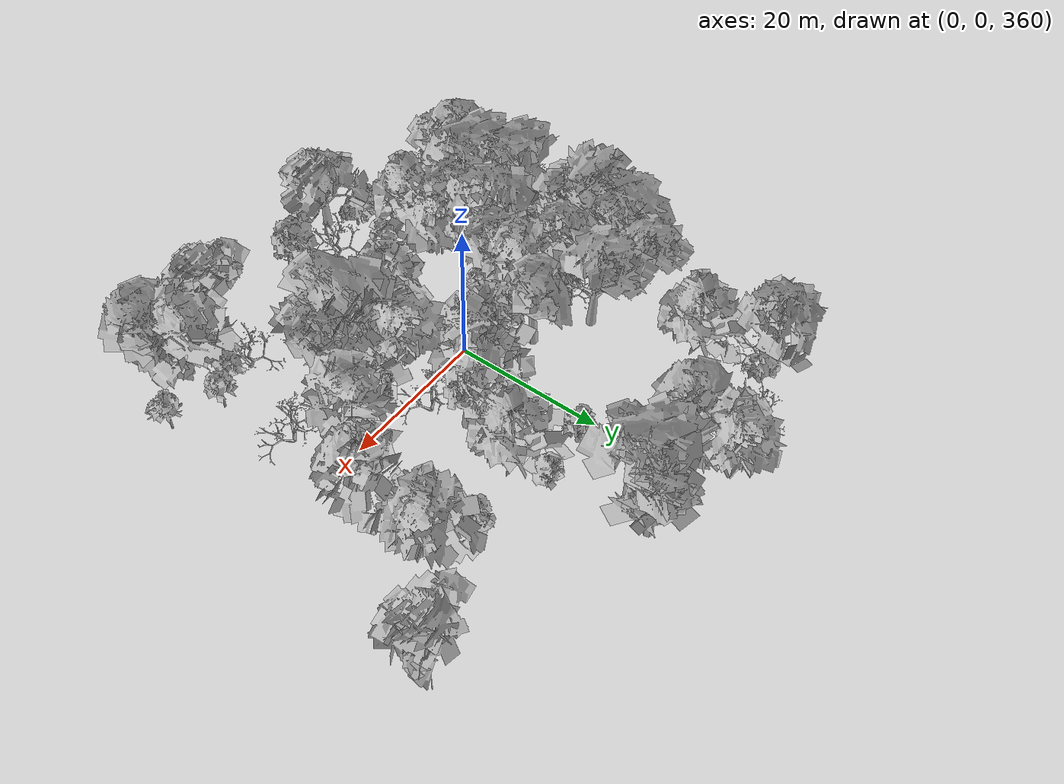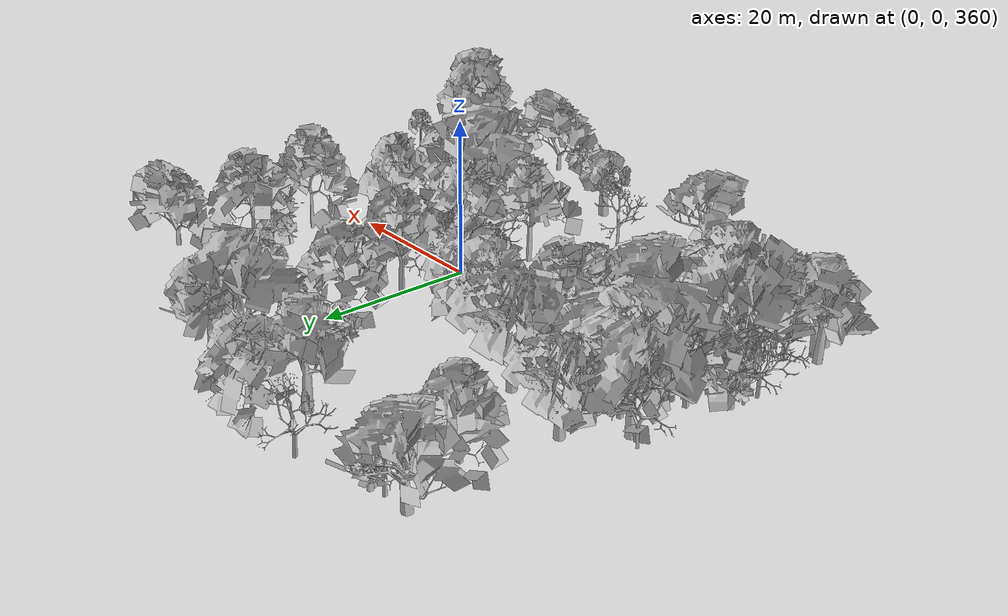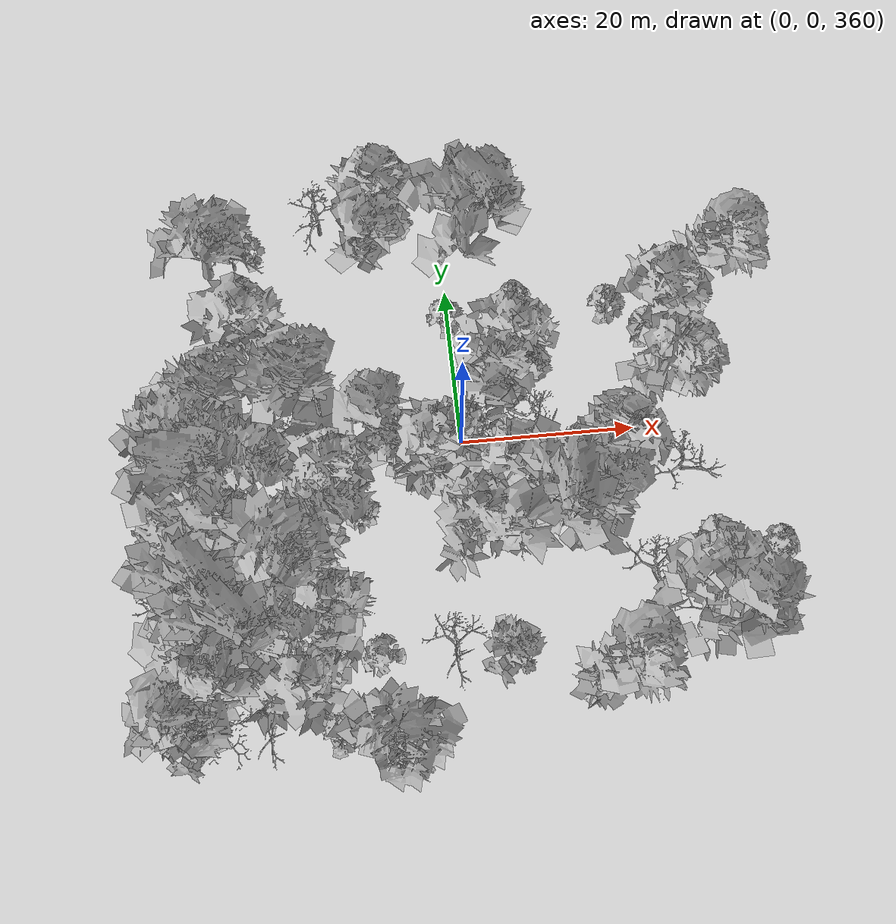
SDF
<sdf version="1.6">
 <world name="default">
  <light name="sun" type="directional">
   <pose>0 0 10 0 -0 0</pose>
   <diffuse>0.8 0.8 0.8 1</diffuse>
   <specular>0.2 0.2 0.2 1</specular>
   <attenuation>
    <range>1000</range>
    <constant>0.9</constant>
    <linear>0.01</linear>
    <quadratic>0.001</quadratic>
   </attenuation>
   <direction>-0.5 0.1 -0.9</direction>
  </light>
  <scene>
   <sky><clouds><speed>12</speed></clouds></sky>
   <ambient>0.4 0.4 0.4 1</ambient>
   <background>0.7 0.7 0.7 1</background>
   <shadows>1</shadows>
  </scene>
  <spherical_coordinates>
   <surface_model>EARTH_WGS84</surface_model>
   <latitude_deg>47.3977</latitude_deg>
   <longitude_deg>8.54559</longitude_deg>
   <elevation>0</elevation>
   <heading_deg>0</heading_deg>
  </spherical_coordinates>
  <physics name="default_physics" default="0" type="ode">
   <ode>
    <solver>
     <type>quick</type>
     <iters>100</iters>
     <sor>1.3</sor>
     <use_dynamic_moi_rescaling>0</use_dynamic_moi_rescaling>
    </solver>
    <constraints>
     <cfm>0</cfm>
     <erp>0.2</erp>
     <contact_max_correcting_vel>100</contact_max_correcting_vel>
     <contact_surface_layer>0.001</contact_surface_layer>
    </constraints>
   </ode>
   <max_step_size>0.002</max_step_size>
   <real_time_factor>1</real_time_factor>
   <real_time_update_rate>500</real_time_update_rate>
  </physics>
  <gravity>0 0 -9.8</gravity>
  <magnetic_field>6e-06 2.3e-05 -4.2e-05</magnetic_field>
  <atmosphere type="adiabatic"/>
  <model name="my_mesh0">
   <pose>-20.5036 -26.4798 354.043 0 -0 0.010311</pose>
   <static>1</static>
   <link name="body">
    <visual name="visual">
     <geometry><mesh><uri>model://trees/12.dae</uri><scale>1 1 1</scale></mesh></geometry>
    </visual>
    <collision name="collision">
     <geometry><mesh><uri>model://trees/12.dae</uri><scale>1 1 1</scale></mesh></geometry>
    </collision>
   </link>
  </model>
  <model name="my_mesh1">
   <pose>-11.192 -23.6616 355.386 0 -0 1.08261</pose>
   <static>1</static>
   <link name="body">
    <visual name="visual">
     <geometry><mesh><uri>model://trees/0.dae</uri><scale>1 1 1</scale></mesh></geometry>
    </visual>
    <collision name="collision">
     <geometry><mesh><uri>model://trees/0.dae</uri><scale>1 1 1</scale></mesh></geometry>
    </collision>
   </link>
  </model>
  <model name="my_mesh2">
   <pose>-29.6791 -3.30644 353.285 0 -0 0.577973</pose>
   <static>1</static>
   <link name="body">
    <visual name="visual">
     <geometry><mesh><uri>model://trees/14.dae</uri><scale>1 1 1</scale></mesh></geometry>
    </visual>
    <collision name="collision">
     <geometry><mesh><uri>model://trees/14.dae</uri><scale>1 1 1</scale></mesh></geometry>
    </collision>
   </link>
  </model>
  <model name="my_mesh3">
   <pose>-34.6374 -12.186 352.015 0 -0 1.23008</pose>
   <static>1</static>
   <link name="body">
    <visual name="visual">
     <geometry><mesh><uri>model://trees/1.dae</uri><scale>1 1 1</scale></mesh></geometry>
    </visual>
    <collision name="collision">
     <geometry><mesh><uri>model://trees/1.dae</uri><scale>1 1 1</scale></mesh></geometry>
    </collision>
   </link>
  </model>
  <model name="my_mesh4">
   <pose>-29.538 0.602237 353.231 0 0 -0.56561</pose>
   <static>1</static>
   <link name="body">
    <visual name="visual">
     <geometry><mesh><uri>model://trees/12.dae</uri><scale>1 1 1</scale></mesh></geometry>
    </visual>
    <collision name="collision">
     <geometry><mesh><uri>model://trees/12.dae</uri><scale>1 1 1</scale></mesh></geometry>
    </collision>
   </link>
  </model>
  <model name="my_mesh5">
   <pose>-16.5416 -7.94843 354.553 0 -0 0.035001</pose>
   <static>1</static>
   <link name="body">
    <visual name="visual">
     <geometry><mesh><uri>model://trees/8.dae</uri><scale>1 1 1</scale></mesh></geometry>
    </visual>
    <collision name="collision">
     <geometry><mesh><uri>model://trees/8.dae</uri><scale>1 1 1</scale></mesh></geometry>
    </collision>
   </link>
  </model>
  <model name="my_mesh6">
   <pose>-34.176 -14.154 351.961 0 0 -0.295701</pose>
   <static>1</static>
   <link name="body">
    <visual name="visual">
     <geometry><mesh><uri>model://trees/3.dae</uri><scale>1 1 1</scale></mesh></geometry>
    </visual>
    <collision name="collision">
     <geometry><mesh><uri>model://trees/3.dae</uri><scale>1 1 1</scale></mesh></geometry>
    </collision>
   </link>
  </model>
  <model name="my_mesh7">
   <pose>-32.1192 -19.0101 352.386 0 0 -0.694202</pose>
   <static>1</static>
   <link name="body">
    <visual name="visual">
     <geometry><mesh><uri>model://trees/16.dae</uri><scale>1 1 1</scale></mesh></geometry>
    </visual>
    <collision name="collision">
     <geometry><mesh><uri>model://trees/16.dae</uri><scale>1 1 1</scale></mesh></geometry>
    </collision>
   </link>
  </model>
  <model name="my_mesh8">
   <pose>-27.8522 -5.75338 353.403 0 0 -0.846733</pose>
   <static>1</static>
   <link name="body">
    <visual name="visual">
     <geometry><mesh><uri>model://trees/17.dae</uri><scale>1 1 1</scale></mesh></geometry>
    </visual>
    <collision name="collision">
     <geometry><mesh><uri>model://trees/17.dae</uri><scale>1 1 1</scale></mesh></geometry>
    </collision>
   </link>
  </model>
  <model name="my_mesh9">
   <pose>-34.8133 -16.576 351.874 0 0 -0.484392</pose>
   <static>1</static>
   <link name="body">
    <visual name="visual">
     <geometry><mesh><uri>model://trees/17.dae</uri><scale>1 1 1</scale></mesh></geometry>
    </visual>
    <collision name="collision">
     <geometry><mesh><uri>model://trees/17.dae</uri><scale>1 1 1</scale></mesh></geometry>
    </collision>
   </link>
  </model>
  <model name="my_mesh10">
   <pose>-27.8866 -18.7558 353.021 0 0 -1.43969</pose>
   <static>1</static>
   <link name="body">
    <visual name="visual">
     <geometry><mesh><uri>model://trees/16.dae</uri><scale>1 1 1</scale></mesh></geometry>
    </visual>
    <collision name="collision">
     <geometry><mesh><uri>model://trees/16.dae</uri><scale>1 1 1</scale></mesh></geometry>
    </collision>
   </link>
  </model>
  <model name="my_mesh11">
   <pose>-27.0067 -12.3636 353.096 0 -0 0.174064</pose>
   <static>1</static>
   <link name="body">
    <visual name="visual">
     <geometry><mesh><uri>model://trees/3.dae</uri><scale>1 1 1</scale></mesh></geometry>
    </visual>
    <collision name="collision">
     <geometry><mesh><uri>model://trees/3.dae</uri><scale>1 1 1</scale></mesh></geometry>
    </collision>
   </link>
  </model>
  <model name="my_mesh12">
   <pose>-31.5217 -25.0569 352.507 0 0 -1.18894</pose>
   <static>1</static>
   <link name="body">
    <visual name="visual">
     <geometry><mesh><uri>model://trees/14.dae</uri><scale>1 1 1</scale></mesh></geometry>
    </visual>
    <collision name="collision">
     <geometry><mesh><uri>model://trees/14.dae</uri><scale>1 1 1</scale></mesh></geometry>
    </collision>
   </link>
  </model>
  <model name="my_mesh13">
   <pose>-32.6502 1.9195 352.778 0 -0 0.16651</pose>
   <static>1</static>
   <link name="body">
    <visual name="visual">
     <geometry><mesh><uri>model://trees/9.dae</uri><scale>1 1 1</scale></mesh></geometry>
    </visual>
    <collision name="collision">
     <geometry><mesh><uri>model://trees/9.dae</uri><scale>1 1 1</scale></mesh></geometry>
    </collision>
   </link>
  </model>
  <model name="my_mesh14">
   <pose>-32.0418 -7.39521 352.788 0 -0 1.0194</pose>
   <static>1</static>
   <link name="body">
    <visual name="visual">
     <geometry><mesh><uri>model://trees/13.dae</uri><scale>1 1 1</scale></mesh></geometry>
    </visual>
    <collision name="collision">
     <geometry><mesh><uri>model://trees/13.dae</uri><scale>1 1 1</scale></mesh></geometry>
    </collision>
   </link>
  </model>
  <model name="my_mesh15">
   <pose>-23.2618 -20.929 353.694 0 -0 0.174832</pose>
   <static>1</static>
   <link name="body">
    <visual name="visual">
     <geometry><mesh><uri>model://trees/8.dae</uri><scale>1 1 1</scale></mesh></geometry>
    </visual>
    <collision name="collision">
     <geometry><mesh><uri>model://trees/8.dae</uri><scale>1 1 1</scale></mesh></geometry>
    </collision>
   </link>
  </model>
  <model name="my_mesh16">
   <pose>-29.1205 -30.9468 353.035 0 0 -0.80468</pose>
   <static>1</static>
   <link name="body">
    <visual name="visual">
     <geometry><mesh><uri>model://trees/19.dae</uri><scale>1 1 1</scale></mesh></geometry>
    </visual>
    <collision name="collision">
     <geometry><mesh><uri>model://trees/19.dae</uri><scale>1 1 1</scale></mesh></geometry>
    </collision>
   </link>
  </model>
  <model name="my_mesh17">
   <pose>-26.6073 -16.3002 353.094 0 -0 0.026992</pose>
   <static>1</static>
   <link name="body">
    <visual name="visual">
     <geometry><mesh><uri>model://trees/1.dae</uri><scale>1 1 1</scale></mesh></geometry>
    </visual>
    <collision name="collision">
     <geometry><mesh><uri>model://trees/1.dae</uri><scale>1 1 1</scale></mesh></geometry>
    </collision>
   </link>
  </model>
  <model name="my_mesh18">
   <pose>-21.8346 -21.0284 353.866 0 -0 1.43863</pose>
   <static>1</static>
   <link name="body">
    <visual name="visual">
     <geometry><mesh><uri>model://trees/18.dae</uri><scale>1 1 1</scale></mesh></geometry>
    </visual>
    <collision name="collision">
     <geometry><mesh><uri>model://trees/18.dae</uri><scale>1 1 1</scale></mesh></geometry>
    </collision>
   </link>
  </model>
  <model name="my_mesh19">
   <pose>-30.3939 -24.4199 352.759 0 0 -0.976228</pose>
   <static>1</static>
   <link name="body">
    <visual name="visual">
     <geometry><mesh><uri>model://trees/19.dae</uri><scale>1 1 1</scale></mesh></geometry>
    </visual>
    <collision name="collision">
     <geometry><mesh><uri>model://trees/19.dae</uri><scale>1 1 1</scale></mesh></geometry>
    </collision>
   </link>
  </model>
  <model name="my_mesh20">
   <pose>-28.4761 -21.8634 352.98 0 -0 1.51411</pose>
   <static>1</static>
   <link name="body">
    <visual name="visual">
     <geometry><mesh><uri>model://trees/8.dae</uri><scale>1 1 1</scale></mesh></geometry>
    </visual>
    <collision name="collision">
     <geometry><mesh><uri>model://trees/8.dae</uri><scale>1 1 1</scale></mesh></geometry>
    </collision>
   </link>
  </model>
  <model name="my_mesh21">
   <pose>-32.2659 -31.7949 352.458 0 -0 0.498079</pose>
   <static>1</static>
   <link name="body">
    <visual name="visual">
     <geometry><mesh><uri>model://trees/7.dae</uri><scale>1 1 1</scale></mesh></geometry>
    </visual>
    <collision name="collision">
     <geometry><mesh><uri>model://trees/7.dae</uri><scale>1 1 1</scale></mesh></geometry>
    </collision>
   </link>
  </model>
  <model name="my_mesh22">
   <pose>-29.5394 -16.6589 352.685 0 0 -0.039821</pose>
   <static>1</static>
   <link name="body">
    <visual name="visual">
     <geometry><mesh><uri>model://trees/16.dae</uri><scale>1 1 1</scale></mesh></geometry>
    </visual>
    <collision name="collision">
     <geometry><mesh><uri>model://trees/16.dae</uri><scale>1 1 1</scale></mesh></geometry>
    </collision>
   </link>
  </model>
  <model name="my_mesh23">
   <pose>-23.7725 -29.4012 353.583 0 -0 0.046965</pose>
   <static>1</static>
   <link name="body">
    <visual name="visual">
     <geometry><mesh><uri>model://trees/18.dae</uri><scale>1 1 1</scale></mesh></geometry>
    </visual>
    <collision name="collision">
     <geometry><mesh><uri>model://trees/18.dae</uri><scale>1 1 1</scale></mesh></geometry>
    </collision>
   </link>
  </model>
  <model name="my_mesh24">
   <pose>-16.796 -17.405 354.5 0 0 -0.208311</pose>
   <static>1</static>
   <link name="body">
    <visual name="visual">
     <geometry><mesh><uri>model://trees/6.dae</uri><scale>1 1 1</scale></mesh></geometry>
    </visual>
    <collision name="collision">
     <geometry><mesh><uri>model://trees/6.dae</uri><scale>1 1 1</scale></mesh></geometry>
    </collision>
   </link>
  </model>
  <model name="my_mesh25">
   <pose>-28.4424 -20.4609 352.968 0 0 -0.487417</pose>
   <static>1</static>
   <link name="body">
    <visual name="visual">
     <geometry><mesh><uri>model://trees/10.dae</uri><scale>1 1 1</scale></mesh></geometry>
    </visual>
    <collision name="collision">
     <geometry><mesh><uri>model://trees/10.dae</uri><scale>1 1 1</scale></mesh></geometry>
    </collision>
   </link>
  </model>
  <model name="my_mesh26">
   <pose>-34.7786 -14.229 351.839 0 -0 1.43161</pose>
   <static>1</static>
   <link name="body">
    <visual name="visual">
     <geometry><mesh><uri>model://trees/17.dae</uri><scale>1 1 1</scale></mesh></geometry>
    </visual>
    <collision name="collision">
     <geometry><mesh><uri>model://trees/17.dae</uri><scale>1 1 1</scale></mesh></geometry>
    </collision>
   </link>
  </model>
  <model name="my_mesh27">
   <pose>-34.0794 -28.3524 352.165 0 0 -1.01314</pose>
   <static>1</static>
   <link name="body">
    <visual name="visual">
     <geometry><mesh><uri>model://trees/11.dae</uri><scale>1 1 1</scale></mesh></geometry>
    </visual>
    <collision name="collision">
     <geometry><mesh><uri>model://trees/11.dae</uri><scale>1 1 1</scale></mesh></geometry>
    </collision>
   </link>
  </model>
  <model name="my_mesh28">
   <pose>-26.6319 -20.13 353.149 0 0 -0.037482</pose>
   <static>1</static>
   <link name="body">
    <visual name="visual">
     <geometry><mesh><uri>model://trees/16.dae</uri><scale>1 1 1</scale></mesh></geometry>
    </visual>
    <collision name="collision">
     <geometry><mesh><uri>model://trees/16.dae</uri><scale>1 1 1</scale></mesh></geometry>
    </collision>
   </link>
  </model>
  <model name="my_mesh29">
   <pose>-31.3186 -15.3545 352.439 0 0 -0.656398</pose>
   <static>1</static>
   <link name="body">
    <visual name="visual">
     <geometry><mesh><uri>model://trees/10.dae</uri><scale>1 1 1</scale></mesh></geometry>
    </visual>
    <collision name="collision">
     <geometry><mesh><uri>model://trees/10.dae</uri><scale>1 1 1</scale></mesh></geometry>
    </collision>
   </link>
  </model>
  <model name="my_mesh30">
   <pose>-30.4019 -22.6804 352.701 0 0 -0.872765</pose>
   <static>1</static>
   <link name="body">
    <visual name="visual">
     <geometry><mesh><uri>model://trees/2.dae</uri><scale>1 1 1</scale></mesh></geometry>
    </visual>
    <collision name="collision">
     <geometry><mesh><uri>model://trees/2.dae</uri><scale>1 1 1</scale></mesh></geometry>
    </collision>
   </link>
  </model>
  <model name="my_mesh31">
   <pose>-32.9681 -29.1954 352.254 0 0 -0.833748</pose>
   <static>1</static>
   <link name="body">
    <visual name="visual">
     <geometry><mesh><uri>model://trees/8.dae</uri><scale>1 1 1</scale></mesh></geometry>
    </visual>
    <collision name="collision">
     <geometry><mesh><uri>model://trees/8.dae</uri><scale>1 1 1</scale></mesh></geometry>
    </collision>
   </link>
  </model>
  <model name="my_mesh32">
   <pose>-30.6461 -8.25341 352.859 0 0 -0.650369</pose>
   <static>1</static>
   <link name="body">
    <visual name="visual">
     <geometry><mesh><uri>model://trees/6.dae</uri><scale>1 1 1</scale></mesh></geometry>
    </visual>
    <collision name="collision">
     <geometry><mesh><uri>model://trees/6.dae</uri><scale>1 1 1</scale></mesh></geometry>
    </collision>
   </link>
  </model>
  <model name="my_mesh33">
   <pose>7.77854 6.5138 357.631 0 0 -0.195772</pose>
   <static>1</static>
   <link name="body">
    <visual name="visual">
     <geometry><mesh><uri>model://trees/7.dae</uri><scale>1 1 1</scale></mesh></geometry>
    </visual>
    <collision name="collision">
     <geometry><mesh><uri>model://trees/7.dae</uri><scale>1 1 1</scale></mesh></geometry>
    </collision>
   </link>
  </model>
  <model name="my_mesh34">
   <pose>13.1052 -2.38587 359.786 0 -0 1.04181</pose>
   <static>1</static>
   <link name="body">
    <visual name="visual">
     <geometry><mesh><uri>model://trees/3.dae</uri><scale>1 1 1</scale></mesh></geometry>
    </visual>
    <collision name="collision">
     <geometry><mesh><uri>model://trees/3.dae</uri><scale>1 1 1</scale></mesh></geometry>
    </collision>
   </link>
  </model>
  <model name="my_mesh35">
   <pose>0.937421 -11.9889 357.865 0 0 -1.07851</pose>
   <static>1</static>
   <link name="body">
    <visual name="visual">
     <geometry><mesh><uri>model://trees/14.dae</uri><scale>1 1 1</scale></mesh></geometry>
    </visual>
    <collision name="collision">
     <geometry><mesh><uri>model://trees/14.dae</uri><scale>1 1 1</scale></mesh></geometry>
    </collision>
   </link>
  </model>
  <model name="my_mesh36">
   <pose>-4.21537 -0.174203 355.743 0 0 -0.796806</pose>
   <static>1</static>
   <link name="body">
    <visual name="visual">
     <geometry><mesh><uri>model://trees/12.dae</uri><scale>1 1 1</scale></mesh></geometry>
    </visual>
    <collision name="collision">
     <geometry><mesh><uri>model://trees/12.dae</uri><scale>1 1 1</scale></mesh></geometry>
    </collision>
   </link>
  </model>
  <model name="my_mesh37">
   <pose>25.3874 5.78384 359.168 0 0 -1.06744</pose>
   <static>1</static>
   <link name="body">
    <visual name="visual">
     <geometry><mesh><uri>model://trees/15.dae</uri><scale>1 1 1</scale></mesh></geometry>
    </visual>
    <collision name="collision">
     <geometry><mesh><uri>model://trees/15.dae</uri><scale>1 1 1</scale></mesh></geometry>
    </collision>
   </link>
  </model>
  <model name="my_mesh38">
   <pose>-25.7423 29.98 353.388 0 -0 1.03683</pose>
   <static>1</static>
   <link name="body">
    <visual name="visual">
     <geometry><mesh><uri>model://trees/17.dae</uri><scale>1 1 1</scale></mesh></geometry>
    </visual>
    <collision name="collision">
     <geometry><mesh><uri>model://trees/17.dae</uri><scale>1 1 1</scale></mesh></geometry>
    </collision>
   </link>
  </model>
  <model name="my_mesh39">
   <pose>3.49169 29.2571 354.886 0 0 -0.626194</pose>
   <static>1</static>
   <link name="body">
    <visual name="visual">
     <geometry><mesh><uri>model://trees/10.dae</uri><scale>1 1 1</scale></mesh></geometry>
    </visual>
    <collision name="collision">
     <geometry><mesh><uri>model://trees/10.dae</uri><scale>1 1 1</scale></mesh></geometry>
    </collision>
   </link>
  </model>
  <model name="my_mesh40">
   <pose>17.7527 -3.84616 360.644 0 -0 0.927665</pose>
   <static>1</static>
   <link name="body">
    <visual name="visual">
     <geometry><mesh><uri>model://trees/12.dae</uri><scale>1 1 1</scale></mesh></geometry>
    </visual>
    <collision name="collision">
     <geometry><mesh><uri>model://trees/12.dae</uri><scale>1 1 1</scale></mesh></geometry>
    </collision>
   </link>
  </model>
  <model name="my_mesh41">
   <pose>14.1864 -11.615 360.424 0 -0 0.479641</pose>
   <static>1</static>
   <link name="body">
    <visual name="visual">
     <geometry><mesh><uri>model://trees/8.dae</uri><scale>1 1 1</scale></mesh></geometry>
    </visual>
    <collision name="collision">
     <geometry><mesh><uri>model://trees/8.dae</uri><scale>1 1 1</scale></mesh></geometry>
    </collision>
   </link>
  </model>
  <model name="my_mesh42">
   <pose>32.4132 -17.8439 363.069 0 -0 0.255435</pose>
   <static>1</static>
   <link name="body">
    <visual name="visual">
     <geometry><mesh><uri>model://trees/2.dae</uri><scale>1 1 1</scale></mesh></geometry>
    </visual>
    <collision name="collision">
     <geometry><mesh><uri>model://trees/2.dae</uri><scale>1 1 1</scale></mesh></geometry>
    </collision>
   </link>
  </model>
  <model name="my_mesh43">
   <pose>23.3246 -18.1757 362.467 0 -0 0.522425</pose>
   <static>1</static>
   <link name="body">
    <visual name="visual">
     <geometry><mesh><uri>model://trees/6.dae</uri><scale>1 1 1</scale></mesh></geometry>
    </visual>
    <collision name="collision">
     <geometry><mesh><uri>model://trees/6.dae</uri><scale>1 1 1</scale></mesh></geometry>
    </collision>
   </link>
  </model>
  <model name="my_mesh44">
   <pose>-24.8553 -1.23358 353.914 0 0 -0.384294</pose>
   <static>1</static>
   <link name="body">
    <visual name="visual">
     <geometry><mesh><uri>model://trees/8.dae</uri><scale>1 1 1</scale></mesh></geometry>
    </visual>
    <collision name="collision">
     <geometry><mesh><uri>model://trees/8.dae</uri><scale>1 1 1</scale></mesh></geometry>
    </collision>
   </link>
  </model>
  <model name="my_mesh45">
   <pose>6.01565 -9.66331 358.54 0 0 -0.045626</pose>
   <static>1</static>
   <link name="body">
    <visual name="visual">
     <geometry><mesh><uri>model://trees/18.dae</uri><scale>1 1 1</scale></mesh></geometry>
    </visual>
    <collision name="collision">
     <geometry><mesh><uri>model://trees/18.dae</uri><scale>1 1 1</scale></mesh></geometry>
    </collision>
   </link>
  </model>
  <model name="my_mesh46">
   <pose>28.0299 -25.4161 363.658 0 0 -0.186438</pose>
   <static>1</static>
   <link name="body">
    <visual name="visual">
     <geometry><mesh><uri>model://trees/11.dae</uri><scale>1 1 1</scale></mesh></geometry>
    </visual>
    <collision name="collision">
     <geometry><mesh><uri>model://trees/11.dae</uri><scale>1 1 1</scale></mesh></geometry>
    </collision>
   </link>
  </model>
  <model name="my_mesh47">
   <pose>34.0272 21.4794 357.994 0 0 -1.4286</pose>
   <static>1</static>
   <link name="body">
    <visual name="visual">
     <geometry><mesh><uri>model://trees/13.dae</uri><scale>1 1 1</scale></mesh></geometry>
    </visual>
    <collision name="collision">
     <geometry><mesh><uri>model://trees/13.dae</uri><scale>1 1 1</scale></mesh></geometry>
    </collision>
   </link>
  </model>
  <model name="my_mesh48">
   <pose>5.1148 -5.76891 357.948 0 -0 0.728691</pose>
   <static>1</static>
   <link name="body">
    <visual name="visual">
     <geometry><mesh><uri>model://trees/15.dae</uri><scale>1 1 1</scale></mesh></geometry>
    </visual>
    <collision name="collision">
     <geometry><mesh><uri>model://trees/15.dae</uri><scale>1 1 1</scale></mesh></geometry>
    </collision>
   </link>
  </model>
  <model name="my_mesh49">
   <pose>-25.5499 20.1961 353.345 0 0 -0.497315</pose>
   <static>1</static>
   <link name="body">
    <visual name="visual">
     <geometry><mesh><uri>model://trees/12.dae</uri><scale>1 1 1</scale></mesh></geometry>
    </visual>
    <collision name="collision">
     <geometry><mesh><uri>model://trees/12.dae</uri><scale>1 1 1</scale></mesh></geometry>
    </collision>
   </link>
  </model>
  <model name="my_mesh50">
   <pose>13.1064 -6.84943 360.054 0 0 -1.45995</pose>
   <static>1</static>
   <link name="body">
    <visual name="visual">
     <geometry><mesh><uri>model://trees/1.dae</uri><scale>1 1 1</scale></mesh></geometry>
    </visual>
    <collision name="collision">
     <geometry><mesh><uri>model://trees/1.dae</uri><scale>1 1 1</scale></mesh></geometry>
    </collision>
   </link>
  </model>
  <model name="my_mesh51">
   <pose>19.2423 16.4615 357.477 0 0 -0.839177</pose>
   <static>1</static>
   <link name="body">
    <visual name="visual">
     <geometry><mesh><uri>model://trees/1.dae</uri><scale>1 1 1</scale></mesh></geometry>
    </visual>
    <collision name="collision">
     <geometry><mesh><uri>model://trees/1.dae</uri><scale>1 1 1</scale></mesh></geometry>
    </collision>
   </link>
  </model>
  <model name="my_mesh52">
   <pose>-11.7164 -6.88688 355.213 0 0 -1.14448</pose>
   <static>1</static>
   <link name="body">
    <visual name="visual">
     <geometry><mesh><uri>model://trees/2.dae</uri><scale>1 1 1</scale></mesh></geometry>
    </visual>
    <collision name="collision">
     <geometry><mesh><uri>model://trees/2.dae</uri><scale>1 1 1</scale></mesh></geometry>
    </collision>
   </link>
  </model>
  <model name="my_mesh53">
   <pose>-7.75573 34.7487 354.005 0 -0 0.514452</pose>
   <static>1</static>
   <link name="body">
    <visual name="visual">
     <geometry><mesh><uri>model://trees/15.dae</uri><scale>1 1 1</scale></mesh></geometry>
    </visual>
    <collision name="collision">
     <geometry><mesh><uri>model://trees/15.dae</uri><scale>1 1 1</scale></mesh></geometry>
    </collision>
   </link>
  </model>
  <model name="my_mesh54">
   <pose>24.3353 -6.18978 361.529 0 -0 1.34074</pose>
   <static>1</static>
   <link name="body">
    <visual name="visual">
     <geometry><mesh><uri>model://trees/18.dae</uri><scale>1 1 1</scale></mesh></geometry>
    </visual>
    <collision name="collision">
     <geometry><mesh><uri>model://trees/18.dae</uri><scale>1 1 1</scale></mesh></geometry>
    </collision>
   </link>
  </model>
  <model name="my_mesh55">
   <pose>-0.060527 17.806 355.276 0 0 -0.363973</pose>
   <static>1</static>
   <link name="body">
    <visual name="visual">
     <geometry><mesh><uri>model://trees/1.dae</uri><scale>1 1 1</scale></mesh></geometry>
    </visual>
    <collision name="collision">
     <geometry><mesh><uri>model://trees/1.dae</uri><scale>1 1 1</scale></mesh></geometry>
    </collision>
   </link>
  </model>
  <model name="my_mesh56">
   <pose>-16.0917 -18.9268 354.602 0 0 -0.103338</pose>
   <static>1</static>
   <link name="body">
    <visual name="visual">
     <geometry><mesh><uri>model://trees/13.dae</uri><scale>1 1 1</scale></mesh></geometry>
    </visual>
    <collision name="collision">
     <geometry><mesh><uri>model://trees/13.dae</uri><scale>1 1 1</scale></mesh></geometry>
    </collision>
   </link>
  </model>
  <model name="my_mesh57">
   <pose>-2.91937 -24.3181 357.808 0 -0 0.087146</pose>
   <static>1</static>
   <link name="body">
    <visual name="visual">
     <geometry><mesh><uri>model://trees/17.dae</uri><scale>1 1 1</scale></mesh></geometry>
    </visual>
    <collision name="collision">
     <geometry><mesh><uri>model://trees/17.dae</uri><scale>1 1 1</scale></mesh></geometry>
    </collision>
   </link>
  </model>
  <model name="my_mesh58">
   <pose>25.2117 -22.3689 363.036 0 -0 0.578738</pose>
   <static>1</static>
   <link name="body">
    <visual name="visual">
     <geometry><mesh><uri>model://trees/14.dae</uri><scale>1 1 1</scale></mesh></geometry>
    </visual>
    <collision name="collision">
     <geometry><mesh><uri>model://trees/14.dae</uri><scale>1 1 1</scale></mesh></geometry>
    </collision>
   </link>
  </model>
  <model name="my_mesh59">
   <pose>-19.2808 -11.0228 354.116 0 0 -0.625246</pose>
   <static>1</static>
   <link name="body">
    <visual name="visual">
     <geometry><mesh><uri>model://trees/13.dae</uri><scale>1 1 1</scale></mesh></geometry>
    </visual>
    <collision name="collision">
     <geometry><mesh><uri>model://trees/13.dae</uri><scale>1 1 1</scale></mesh></geometry>
    </collision>
   </link>
  </model>
  <model name="my_mesh60">
   <pose>8.14506 19.0832 355.734 0 -0 1.46799</pose>
   <static>1</static>
   <link name="body">
    <visual name="visual">
     <geometry><mesh><uri>model://trees/2.dae</uri><scale>1 1 1</scale></mesh></geometry>
    </visual>
    <collision name="collision">
     <geometry><mesh><uri>model://trees/2.dae</uri><scale>1 1 1</scale></mesh></geometry>
    </collision>
   </link>
  </model>
  <model name="my_mesh61">
   <pose>-29.3597 -21.918 352.877 0 -0 0.876409</pose>
   <static>1</static>
   <link name="body">
    <visual name="visual">
     <geometry><mesh><uri>model://trees/16.dae</uri><scale>1 1 1</scale></mesh></geometry>
    </visual>
    <collision name="collision">
     <geometry><mesh><uri>model://trees/16.dae</uri><scale>1 1 1</scale></mesh></geometry>
    </collision>
   </link>
  </model>
  <model name="my_mesh62">
   <pose>9.10326 2.01487 358.487 0 -0 1.00324</pose>
   <static>1</static>
   <link name="body">
    <visual name="visual">
     <geometry><mesh><uri>model://trees/18.dae</uri><scale>1 1 1</scale></mesh></geometry>
    </visual>
    <collision name="collision">
     <geometry><mesh><uri>model://trees/18.dae</uri><scale>1 1 1</scale></mesh></geometry>
    </collision>
   </link>
  </model>
  <model name="my_mesh63">
   <pose>3.16859 -27.6639 360.024 0 0 -0.536729</pose>
   <static>1</static>
   <link name="body">
    <visual name="visual">
     <geometry><mesh><uri>model://trees/3.dae</uri><scale>1 1 1</scale></mesh></geometry>
    </visual>
    <collision name="collision">
     <geometry><mesh><uri>model://trees/3.dae</uri><scale>1 1 1</scale></mesh></geometry>
    </collision>
   </link>
  </model>
  <model name="my_mesh64">
   <pose>15.1013 -29.6875 362.051 0 0 -1.40076</pose>
   <static>1</static>
   <link name="body">
    <visual name="visual">
     <geometry><mesh><uri>model://trees/13.dae</uri><scale>1 1 1</scale></mesh></geometry>
    </visual>
    <collision name="collision">
     <geometry><mesh><uri>model://trees/13.dae</uri><scale>1 1 1</scale></mesh></geometry>
    </collision>
   </link>
  </model>
  <model name="my_mesh65">
   <pose>6.92459 12.9794 356.134 0 0 -0.307534</pose>
   <static>1</static>
   <link name="body">
    <visual name="visual">
     <geometry><mesh><uri>model://trees/12.dae</uri><scale>1 1 1</scale></mesh></geometry>
    </visual>
    <collision name="collision">
     <geometry><mesh><uri>model://trees/12.dae</uri><scale>1 1 1</scale></mesh></geometry>
    </collision>
   </link>
  </model>
  <model name="my_mesh66">
   <pose>-29.1102 29.6215 353.111 0 0 -0.801604</pose>
   <static>1</static>
   <link name="body">
    <visual name="visual">
     <geometry><mesh><uri>model://trees/8.dae</uri><scale>1 1 1</scale></mesh></geometry>
    </visual>
    <collision name="collision">
     <geometry><mesh><uri>model://trees/8.dae</uri><scale>1 1 1</scale></mesh></geometry>
    </collision>
   </link>
  </model>
  <model name="my_mesh67">
   <pose>-16.1127 -2.93969 354.785 0 0 -0.133081</pose>
   <static>1</static>
   <link name="body">
    <visual name="visual">
     <geometry><mesh><uri>model://trees/15.dae</uri><scale>1 1 1</scale></mesh></geometry>
    </visual>
    <collision name="collision">
     <geometry><mesh><uri>model://trees/15.dae</uri><scale>1 1 1</scale></mesh></geometry>
    </collision>
   </link>
  </model>
  <model name="my_mesh68">
   <pose>-31.1796 -12.1153 352.479 0 -0 1.31359</pose>
   <static>1</static>
   <link name="body">
    <visual name="visual">
     <geometry><mesh><uri>model://trees/0.dae</uri><scale>1 1 1</scale></mesh></geometry>
    </visual>
    <collision name="collision">
     <geometry><mesh><uri>model://trees/0.dae</uri><scale>1 1 1</scale></mesh></geometry>
    </collision>
   </link>
  </model>
  <model name="my_mesh69">
   <pose>-21.9891 -12.2497 353.726 0 0 -0.736724</pose>
   <static>1</static>
   <link name="body">
    <visual name="visual">
     <geometry><mesh><uri>model://trees/9.dae</uri><scale>1 1 1</scale></mesh></geometry>
    </visual>
    <collision name="collision">
     <geometry><mesh><uri>model://trees/9.dae</uri><scale>1 1 1</scale></mesh></geometry>
    </collision>
   </link>
  </model>
  <model name="my_mesh70">
   <pose>-10.3144 3.52019 355.192 0 -0 0.054385</pose>
   <static>1</static>
   <link name="body">
    <visual name="visual">
     <geometry><mesh><uri>model://trees/11.dae</uri><scale>1 1 1</scale></mesh></geometry>
    </visual>
    <collision name="collision">
     <geometry><mesh><uri>model://trees/11.dae</uri><scale>1 1 1</scale></mesh></geometry>
    </collision>
   </link>
  </model>
  <model name="my_mesh71">
   <pose>9.91629 -10.7 359.508 0 0 -1.38546</pose>
   <static>1</static>
   <link name="body">
    <visual name="visual">
     <geometry><mesh><uri>model://trees/10.dae</uri><scale>1 1 1</scale></mesh></geometry>
    </visual>
    <collision name="collision">
     <geometry><mesh><uri>model://trees/10.dae</uri><scale>1 1 1</scale></mesh></geometry>
    </collision>
   </link>
  </model>
  <model name="my_mesh72">
   <pose>10.0622 -7.84036 359.304 0 0 -1.43975</pose>
   <static>1</static>
   <link name="body">
    <visual name="visual">
     <geometry><mesh><uri>model://trees/12.dae</uri><scale>1 1 1</scale></mesh></geometry>
    </visual>
    <collision name="collision">
     <geometry><mesh><uri>model://trees/12.dae</uri><scale>1 1 1</scale></mesh></geometry>
    </collision>
   </link>
  </model>
  <model name="my_mesh73">
   <pose>-34.4007 2.59721 352.488 0 -0 1.5639</pose>
   <static>1</static>
   <link name="body">
    <visual name="visual">
     <geometry><mesh><uri>model://trees/17.dae</uri><scale>1 1 1</scale></mesh></geometry>
    </visual>
    <collision name="collision">
     <geometry><mesh><uri>model://trees/17.dae</uri><scale>1 1 1</scale></mesh></geometry>
    </collision>
   </link>
  </model>
  <model name="my_mesh74">
   <pose>-20.1101 1.17217 354.401 0 -0 0.538184</pose>
   <static>1</static>
   <link name="body">
    <visual name="visual">
     <geometry><mesh><uri>model://trees/5.dae</uri><scale>1 1 1</scale></mesh></geometry>
    </visual>
    <collision name="collision">
     <geometry><mesh><uri>model://trees/5.dae</uri><scale>1 1 1</scale></mesh></geometry>
    </collision>
   </link>
  </model>
  <model name="my_mesh75">
   <pose>-22.2712 -7.90162 353.893 0 -0 1.28097</pose>
   <static>1</static>
   <link name="body">
    <visual name="visual">
     <geometry><mesh><uri>model://trees/18.dae</uri><scale>1 1 1</scale></mesh></geometry>
    </visual>
    <collision name="collision">
     <geometry><mesh><uri>model://trees/18.dae</uri><scale>1 1 1</scale></mesh></geometry>
    </collision>
   </link>
  </model>
  <model name="my_mesh76">
   <pose>12.141 -6.39316 359.852 0 -0 1.54638</pose>
   <static>1</static>
   <link name="body">
    <visual name="visual">
     <geometry><mesh><uri>model://trees/4.dae</uri><scale>1 1 1</scale></mesh></geometry>
    </visual>
    <collision name="collision">
     <geometry><mesh><uri>model://trees/4.dae</uri><scale>1 1 1</scale></mesh></geometry>
    </collision>
   </link>
  </model>
  <model name="my_mesh77">
   <pose>23.4758 12.3012 358.256 0 -0 0.706201</pose>
   <static>1</static>
   <link name="body">
    <visual name="visual">
     <geometry><mesh><uri>model://trees/5.dae</uri><scale>1 1 1</scale></mesh></geometry>
    </visual>
    <collision name="collision">
     <geometry><mesh><uri>model://trees/5.dae</uri><scale>1 1 1</scale></mesh></geometry>
    </collision>
   </link>
  </model>
  <model name="my_mesh78">
   <pose>25.0159 15.0063 358.069 0 0 -0.068114</pose>
   <static>1</static>
   <link name="body">
    <visual name="visual">
     <geometry><mesh><uri>model://trees/15.dae</uri><scale>1 1 1</scale></mesh></geometry>
    </visual>
    <collision name="collision">
     <geometry><mesh><uri>model://trees/15.dae</uri><scale>1 1 1</scale></mesh></geometry>
    </collision>
   </link>
  </model>
  <model name="my_mesh79">
   <pose>26.1517 -15.7455 362.495 0 0 -0.830441</pose>
   <static>1</static>
   <link name="body">
    <visual name="visual">
     <geometry><mesh><uri>model://trees/2.dae</uri><scale>1 1 1</scale></mesh></geometry>
    </visual>
    <collision name="collision">
     <geometry><mesh><uri>model://trees/2.dae</uri><scale>1 1 1</scale></mesh></geometry>
    </collision>
   </link>
  </model>
  <model name="my_mesh80">
   <pose>-1.99729 -0.434887 356.113 0 -0 0.350798</pose>
   <static>1</static>
   <link name="body">
    <visual name="visual">
     <geometry><mesh><uri>model://trees/12.dae</uri><scale>1 1 1</scale></mesh></geometry>
    </visual>
    <collision name="collision">
     <geometry><mesh><uri>model://trees/12.dae</uri><scale>1 1 1</scale></mesh></geometry>
    </collision>
   </link>
  </model>
  <model name="my_mesh81">
   <pose>-31.8819 -2.61561 352.937 0 -0 0.259617</pose>
   <static>1</static>
   <link name="body">
    <visual name="visual">
     <geometry><mesh><uri>model://trees/10.dae</uri><scale>1 1 1</scale></mesh></geometry>
    </visual>
    <collision name="collision">
     <geometry><mesh><uri>model://trees/10.dae</uri><scale>1 1 1</scale></mesh></geometry>
    </collision>
   </link>
  </model>
  <model name="my_mesh82">
   <pose>0.79701 0.74705 356.459 0 -0 1.04035</pose>
   <static>1</static>
   <link name="body">
    <visual name="visual">
     <geometry><mesh><uri>model://trees/16.dae</uri><scale>1 1 1</scale></mesh></geometry>
    </visual>
    <collision name="collision">
     <geometry><mesh><uri>model://trees/16.dae</uri><scale>1 1 1</scale></mesh></geometry>
    </collision>
   </link>
  </model>
  <model name="my_mesh83">
   <pose>24.8896 -23.5868 362.971 0 -0 0.896004</pose>
   <static>1</static>
   <link name="body">
    <visual name="visual">
     <geometry><mesh><uri>model://trees/12.dae</uri><scale>1 1 1</scale></mesh></geometry>
    </visual>
    <collision name="collision">
     <geometry><mesh><uri>model://trees/12.dae</uri><scale>1 1 1</scale></mesh></geometry>
    </collision>
   </link>
  </model>
  <model name="my_mesh84">
   <pose>-28.4374 8.68084 353.2 0 -0 0.931383</pose>
   <static>1</static>
   <link name="body">
    <visual name="visual">
     <geometry><mesh><uri>model://trees/8.dae</uri><scale>1 1 1</scale></mesh></geometry>
    </visual>
    <collision name="collision">
     <geometry><mesh><uri>model://trees/8.dae</uri><scale>1 1 1</scale></mesh></geometry>
    </collision>
   </link>
  </model>
  <model name="my_mesh85">
   <pose>-14.6111 33.7067 353.955 0 0 -0.320418</pose>
   <static>1</static>
   <link name="body">
    <visual name="visual">
     <geometry><mesh><uri>model://trees/17.dae</uri><scale>1 1 1</scale></mesh></geometry>
    </visual>
    <collision name="collision">
     <geometry><mesh><uri>model://trees/17.dae</uri><scale>1 1 1</scale></mesh></geometry>
    </collision>
   </link>
  </model>
  <model name="my_mesh86">
   <pose>-7.7535 -0.2943 355.488 0 -0 1.08757</pose>
   <static>1</static>
   <link name="body">
    <visual name="visual">
     <geometry><mesh><uri>model://trees/7.dae</uri><scale>1 1 1</scale></mesh></geometry>
    </visual>
    <collision name="collision">
     <geometry><mesh><uri>model://trees/7.dae</uri><scale>1 1 1</scale></mesh></geometry>
    </collision>
   </link>
  </model>
  <model name="my_mesh87">
   <pose>-19.7925 3.1839 354.332 0 -0 1.51878</pose>
   <static>1</static>
   <link name="body">
    <visual name="visual">
     <geometry><mesh><uri>model://trees/19.dae</uri><scale>1 1 1</scale></mesh></geometry>
    </visual>
    <collision name="collision">
     <geometry><mesh><uri>model://trees/19.dae</uri><scale>1 1 1</scale></mesh></geometry>
    </collision>
   </link>
  </model>
  <model name="my_mesh88">
   <pose>19.4173 -18.2911 361.821 0 -0 0.24466</pose>
   <static>1</static>
   <link name="body">
    <visual name="visual">
     <geometry><mesh><uri>model://trees/18.dae</uri><scale>1 1 1</scale></mesh></geometry>
    </visual>
    <collision name="collision">
     <geometry><mesh><uri>model://trees/18.dae</uri><scale>1 1 1</scale></mesh></geometry>
    </collision>
   </link>
  </model>
  <model name="my_mesh89">
   <pose>11.0964 -30.7309 361.864 0 -0 1.55623</pose>
   <static>1</static>
   <link name="body">
    <visual name="visual">
     <geometry><mesh><uri>model://trees/0.dae</uri><scale>1 1 1</scale></mesh></geometry>
    </visual>
    <collision name="collision">
     <geometry><mesh><uri>model://trees/0.dae</uri><scale>1 1 1</scale></mesh></geometry>
    </collision>
   </link>
  </model>
  <model name="my_mesh90">
   <pose>-10.6321 -34.0856 355.549 0 0 -1.41933</pose>
   <static>1</static>
   <link name="body">
    <visual name="visual">
     <geometry><mesh><uri>model://trees/8.dae</uri><scale>1 1 1</scale></mesh></geometry>
    </visual>
    <collision name="collision">
     <geometry><mesh><uri>model://trees/8.dae</uri><scale>1 1 1</scale></mesh></geometry>
    </collision>
   </link>
  </model>
  <model name="my_mesh91">
   <pose>-16.0054 -31.7605 354.541 0 0 -0.605928</pose>
   <static>1</static>
   <link name="body">
    <visual name="visual">
     <geometry><mesh><uri>model://trees/1.dae</uri><scale>1 1 1</scale></mesh></geometry>
    </visual>
    <collision name="collision">
     <geometry><mesh><uri>model://trees/1.dae</uri><scale>1 1 1</scale></mesh></geometry>
    </collision>
   </link>
  </model>
  <model name="my_mesh92">
   <pose>6.03424 31.778 355.115 0 -0 0.802624</pose>
   <static>1</static>
   <link name="body">
    <visual name="visual">
     <geometry><mesh><uri>model://trees/11.dae</uri><scale>1 1 1</scale></mesh></geometry>
    </visual>
    <collision name="collision">
     <geometry><mesh><uri>model://trees/11.dae</uri><scale>1 1 1</scale></mesh></geometry>
    </collision>
   </link>
  </model>
  <model name="my_mesh93">
   <pose>-23.9768 30.5815 353.493 0 -0 0.051212</pose>
   <static>1</static>
   <link name="body">
    <visual name="visual">
     <geometry><mesh><uri>model://trees/0.dae</uri><scale>1 1 1</scale></mesh></geometry>
    </visual>
    <collision name="collision">
     <geometry><mesh><uri>model://trees/0.dae</uri><scale>1 1 1</scale></mesh></geometry>
    </collision>
   </link>
  </model>
  <model name="my_mesh94">
   <pose>-13.7894 -31.0452 354.921 0 0 -1.22744</pose>
   <static>1</static>
   <link name="body">
    <visual name="visual">
     <geometry><mesh><uri>model://trees/4.dae</uri><scale>1 1 1</scale></mesh></geometry>
    </visual>
    <collision name="collision">
     <geometry><mesh><uri>model://trees/4.dae</uri><scale>1 1 1</scale></mesh></geometry>
    </collision>
   </link>
  </model>
  <model name="my_mesh95">
   <pose>-18.6575 7.29119 354.237 0 -0 1.0463</pose>
   <static>1</static>
   <link name="body">
    <visual name="visual">
     <geometry><mesh><uri>model://trees/9.dae</uri><scale>1 1 1</scale></mesh></geometry>
    </visual>
    <collision name="collision">
     <geometry><mesh><uri>model://trees/9.dae</uri><scale>1 1 1</scale></mesh></geometry>
    </collision>
   </link>
  </model>
  <model name="my_mesh96">
   <pose>2.61851 -26.9248 359.891 0 -0 0.064743</pose>
   <static>1</static>
   <link name="body">
    <visual name="visual">
     <geometry><mesh><uri>model://trees/7.dae</uri><scale>1 1 1</scale></mesh></geometry>
    </visual>
    <collision name="collision">
     <geometry><mesh><uri>model://trees/7.dae</uri><scale>1 1 1</scale></mesh></geometry>
    </collision>
   </link>
  </model>
  <model name="my_mesh97">
   <pose>-8.37359 28.2004 354.521 0 0 -1.08389</pose>
   <static>1</static>
   <link name="body">
    <visual name="visual">
     <geometry><mesh><uri>model://trees/11.dae</uri><scale>1 1 1</scale></mesh></geometry>
    </visual>
    <collision name="collision">
     <geometry><mesh><uri>model://trees/11.dae</uri><scale>1 1 1</scale></mesh></geometry>
    </collision>
   </link>
  </model>
  <model name="my_mesh98">
   <pose>4.48361 5.97715 357.121 0 0 -0.354101</pose>
   <static>1</static>
   <link name="body">
    <visual name="visual">
     <geometry><mesh><uri>model://trees/14.dae</uri><scale>1 1 1</scale></mesh></geometry>
    </visual>
    <collision name="collision">
     <geometry><mesh><uri>model://trees/14.dae</uri><scale>1 1 1</scale></mesh></geometry>
    </collision>
   </link>
  </model>
 </world>
</sdf>
